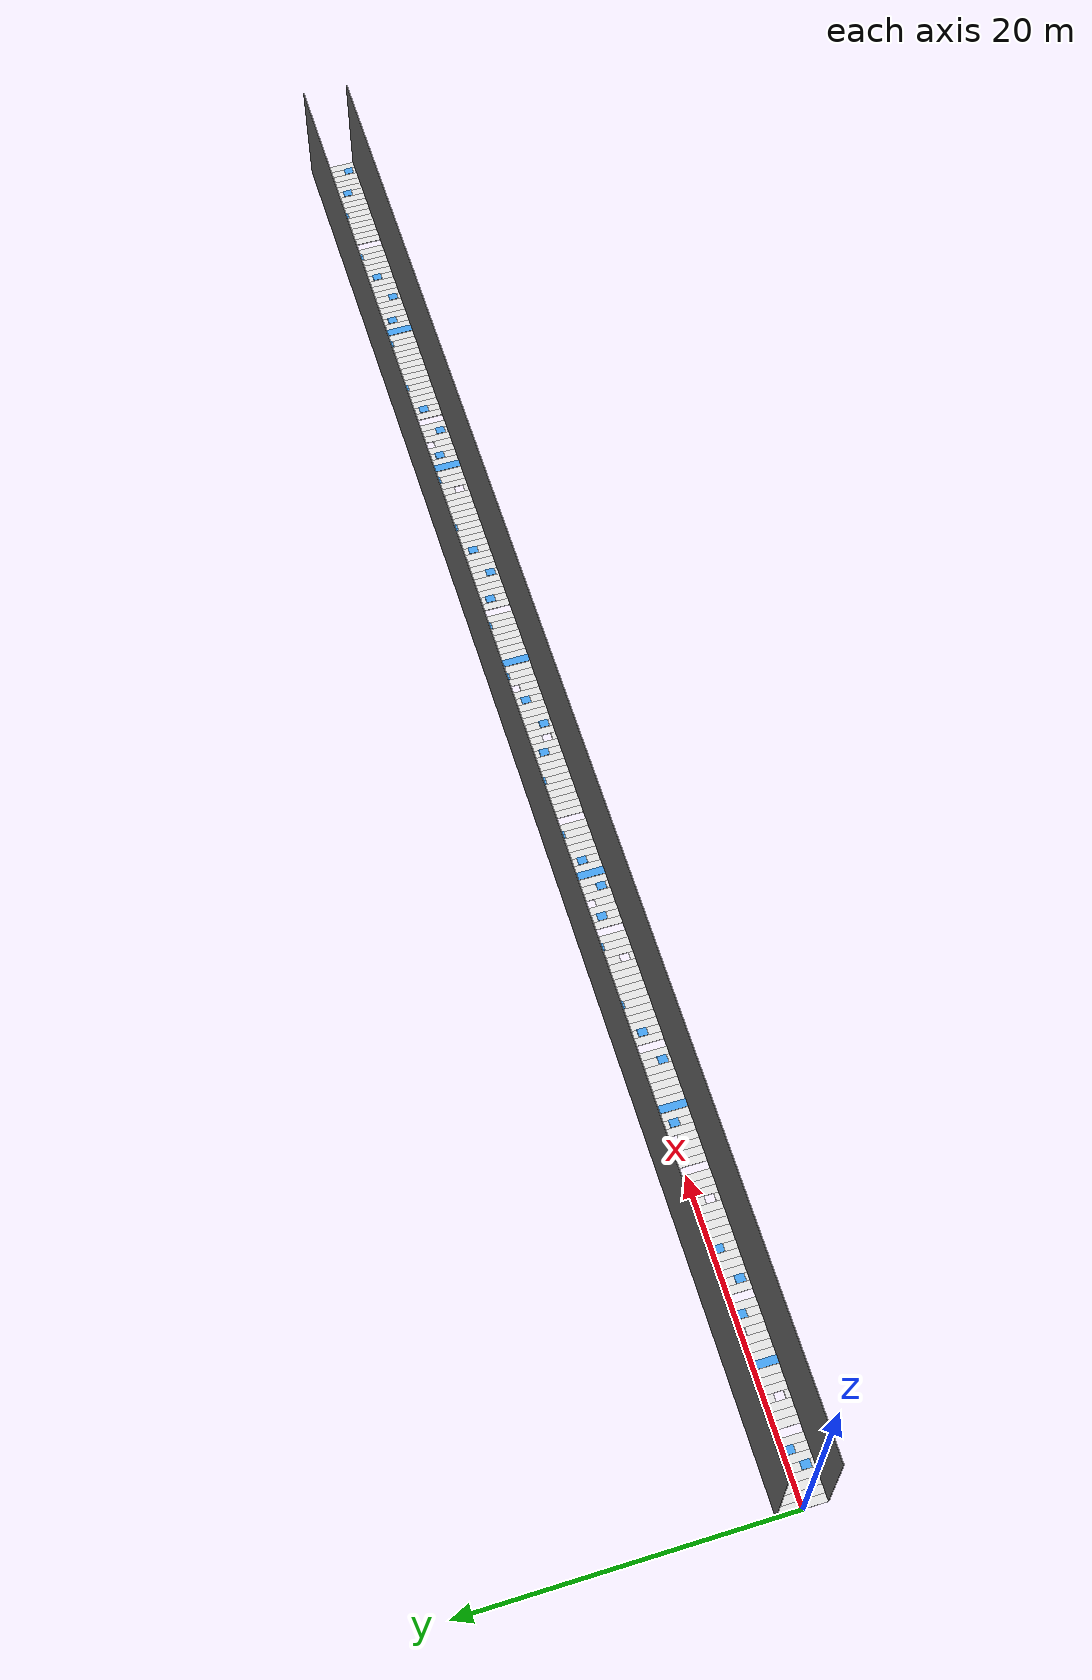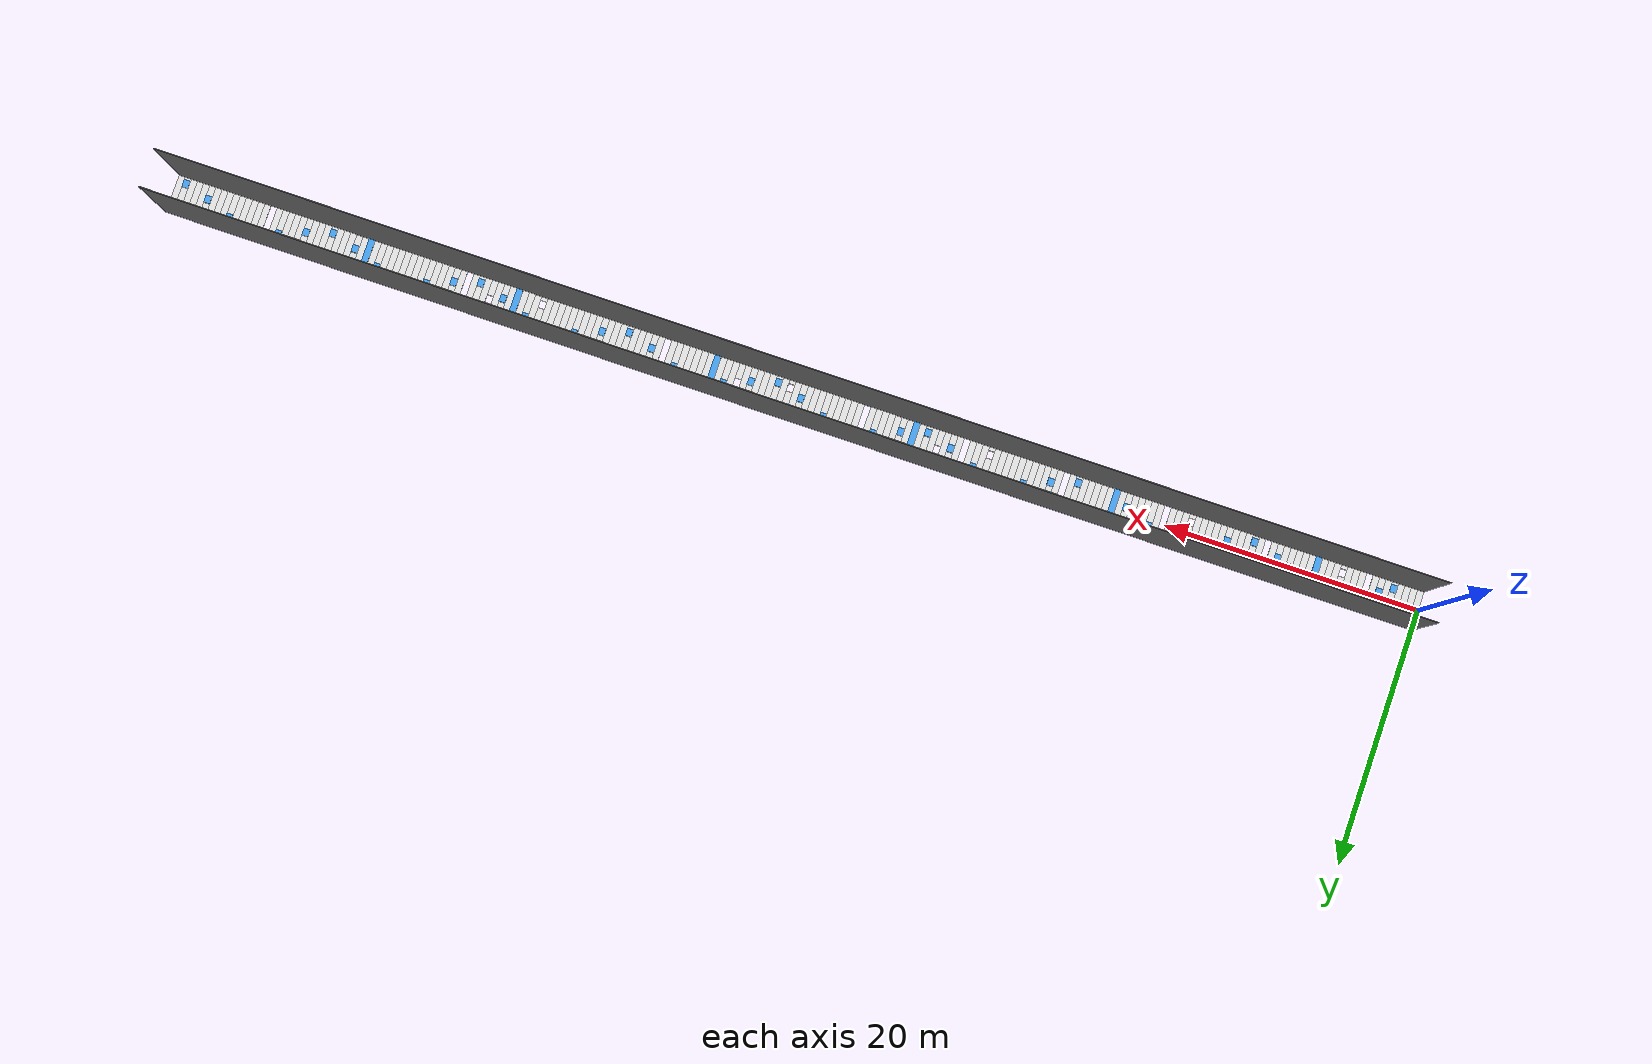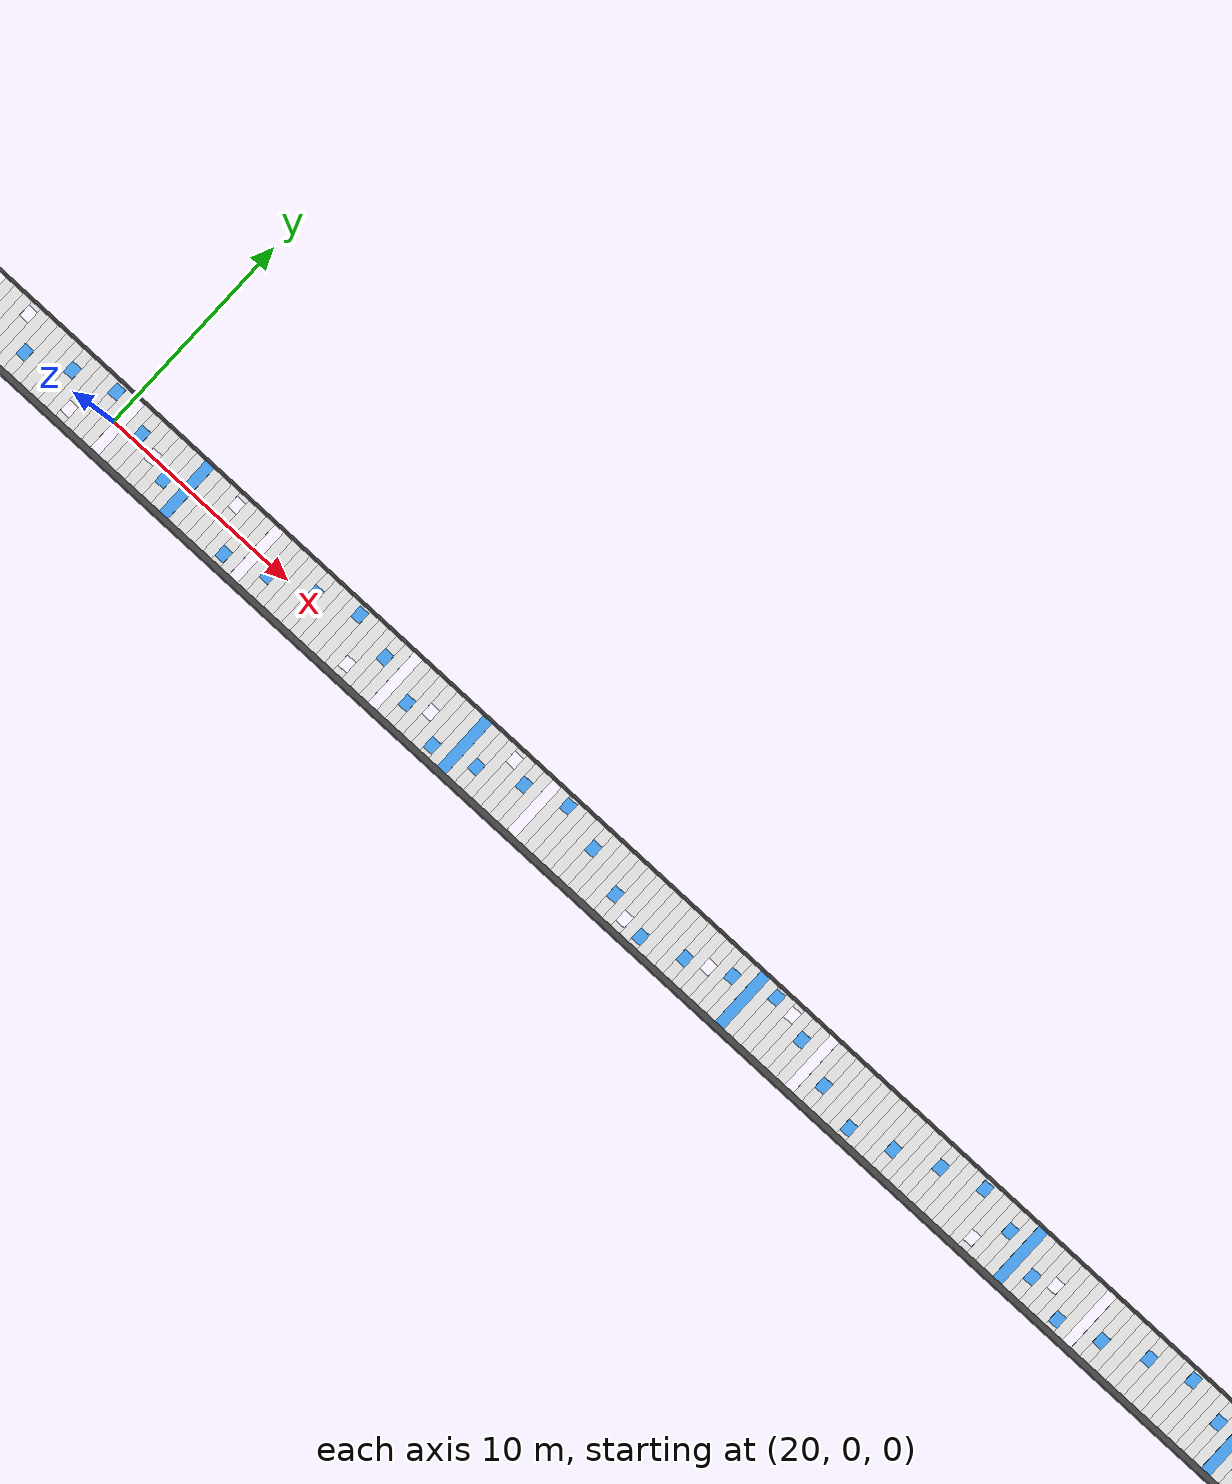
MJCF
<mujoco model="corridor_3x100">
  <compiler angle="degree" autolimits="true"/>
  <option timestep="0.005" gravity="0 0 -9.81"/>
  <size njmax="4000" nconmax="1000"/>
  <asset>
    <material name="mat_floor" rgba="0.85 0.85 0.85 1"/>
    <material name="mat_bump"  rgba="0.25 0.6 0.9 1"/>
    <material name="mat_wall"  rgba="0.4 0.4 0.4 1"/>
  </asset>
  <worldbody>
    <geom name="wall_left" type="box" size="50.000 0.025 4.000" pos="50.000 -1.525 4.000" material="mat_wall"/>
    <geom name="wall_right" type="box" size="50.000 0.025 4.000" pos="50.000 1.525 4.000" material="mat_wall"/>
    <geom type="box" material="mat_floor" size="0.250 1.500 0.025" pos="0.250 0.000 0.025"/>
    <geom type="box" material="mat_floor" size="0.250 1.500 0.025" pos="0.750 0.000 0.025"/>
    <geom type="box" material="mat_floor" size="0.250 1.500 0.025" pos="1.250 0.000 0.025"/>
    <geom type="box" material="mat_floor" size="0.250 1.500 0.025" pos="1.750 0.000 0.025"/>
    <geom type="box" material="mat_floor" size="0.250 1.500 0.025" pos="2.250 0.000 0.025"/>
    <geom type="box" material="mat_bump" size="0.250 0.300 0.040" pos="2.250 -1.000 0.065"/>
    <geom type="box" material="mat_floor" size="0.250 1.500 0.025" pos="2.750 0.000 0.025"/>
    <geom type="box" material="mat_floor" size="0.250 1.500 0.025" pos="3.250 0.000 0.025"/>
    <geom type="box" material="mat_bump" size="0.250 0.300 0.040" pos="3.250 -0.400 0.065"/>
    <geom type="box" material="mat_floor" size="0.250 1.500 0.025" pos="3.750 0.000 0.025"/>
    <geom type="box" material="mat_floor" size="0.250 1.500 0.025" pos="4.750 0.000 0.025"/>
    <geom type="box" material="mat_floor" size="0.250 1.500 0.025" pos="5.250 0.000 0.025"/>
    <geom type="box" material="mat_bump" size="0.250 0.300 0.040" pos="5.250 0.400 0.065"/>
    <geom type="box" material="mat_floor" size="0.250 1.500 0.025" pos="5.750 0.000 0.025"/>
    <geom type="box" material="mat_floor" size="0.250 0.150 0.025" pos="6.250 -1.350 0.025"/>
    <geom type="box" material="mat_floor" size="0.250 1.050 0.025" pos="6.250 0.450 0.025"/>
    <geom type="box" material="mat_floor" size="0.250 1.500 0.025" pos="6.750 0.000 0.025"/>
    <geom type="box" material="mat_floor" size="0.250 1.500 0.025" pos="7.250 0.000 0.025"/>
    <geom type="box" material="mat_bump" size="0.250 0.300 0.040" pos="7.250 1.000 0.065"/>
    <geom type="box" material="mat_floor" size="0.250 1.500 0.025" pos="7.750 0.000 0.025"/>
    <geom type="box" material="mat_floor" size="0.250 1.500 0.025" pos="8.250 0.000 0.025"/>
    <geom type="box" material="mat_bump" size="0.250 1.500 0.040" pos="8.250 0.000 0.065"/>
    <geom type="box" material="mat_floor" size="0.250 1.500 0.025" pos="8.750 0.000 0.025"/>
    <geom type="box" material="mat_floor" size="0.250 1.500 0.025" pos="9.250 0.000 0.025"/>
    <geom type="box" material="mat_bump" size="0.250 0.300 0.040" pos="9.250 0.400 0.065"/>
    <geom type="box" material="mat_floor" size="0.250 1.500 0.025" pos="9.750 0.000 0.025"/>
    <geom type="box" material="mat_floor" size="0.250 0.600 0.025" pos="10.250 -0.900 0.025"/>
    <geom type="box" material="mat_floor" size="0.250 0.600 0.025" pos="10.250 0.900 0.025"/>
    <geom type="box" material="mat_floor" size="0.250 1.500 0.025" pos="10.750 0.000 0.025"/>
    <geom type="box" material="mat_floor" size="0.250 1.500 0.025" pos="11.250 0.000 0.025"/>
    <geom type="box" material="mat_bump" size="0.250 0.300 0.040" pos="11.250 -0.400 0.065"/>
    <geom type="box" material="mat_floor" size="0.250 1.500 0.025" pos="11.750 0.000 0.025"/>
    <geom type="box" material="mat_floor" size="0.250 1.500 0.025" pos="12.750 0.000 0.025"/>
    <geom type="box" material="mat_floor" size="0.250 1.500 0.025" pos="13.250 0.000 0.025"/>
    <geom type="box" material="mat_bump" size="0.250 0.300 0.040" pos="13.250 -1.000 0.065"/>
    <geom type="box" material="mat_floor" size="0.250 1.500 0.025" pos="13.750 0.000 0.025"/>
    <geom type="box" material="mat_floor" size="0.250 1.050 0.025" pos="14.250 -0.450 0.025"/>
    <geom type="box" material="mat_floor" size="0.250 0.150 0.025" pos="14.250 1.350 0.025"/>
    <geom type="box" material="mat_floor" size="0.250 1.500 0.025" pos="14.750 0.000 0.025"/>
    <geom type="box" material="mat_floor" size="0.250 1.500 0.025" pos="15.250 0.000 0.025"/>
    <geom type="box" material="mat_bump" size="0.250 0.300 0.040" pos="15.250 -0.400 0.065"/>
    <geom type="box" material="mat_floor" size="0.250 1.500 0.025" pos="15.750 0.000 0.025"/>
    <geom type="box" material="mat_floor" size="0.250 1.500 0.025" pos="16.250 0.000 0.025"/>
    <geom type="box" material="mat_floor" size="0.250 1.500 0.025" pos="16.750 0.000 0.025"/>
    <geom type="box" material="mat_floor" size="0.250 1.500 0.025" pos="17.250 0.000 0.025"/>
    <geom type="box" material="mat_bump" size="0.250 0.300 0.040" pos="17.250 0.400 0.065"/>
    <geom type="box" material="mat_floor" size="0.250 1.500 0.025" pos="17.750 0.000 0.025"/>
    <geom type="box" material="mat_floor" size="0.250 0.150 0.025" pos="18.250 -1.350 0.025"/>
    <geom type="box" material="mat_floor" size="0.250 1.050 0.025" pos="18.250 0.450 0.025"/>
    <geom type="box" material="mat_floor" size="0.250 1.500 0.025" pos="18.750 0.000 0.025"/>
    <geom type="box" material="mat_floor" size="0.250 1.500 0.025" pos="19.250 0.000 0.025"/>
    <geom type="box" material="mat_bump" size="0.250 0.300 0.040" pos="19.250 1.000 0.065"/>
    <geom type="box" material="mat_floor" size="0.250 1.500 0.025" pos="19.750 0.000 0.025"/>
    <geom type="box" material="mat_floor" size="0.250 1.500 0.025" pos="20.750 0.000 0.025"/>
    <geom type="box" material="mat_floor" size="0.250 1.500 0.025" pos="21.250 0.000 0.025"/>
    <geom type="box" material="mat_bump" size="0.250 0.300 0.040" pos="21.250 0.400 0.065"/>
    <geom type="box" material="mat_floor" size="0.250 1.500 0.025" pos="21.750 0.000 0.025"/>
    <geom type="box" material="mat_floor" size="0.250 0.600 0.025" pos="22.250 -0.900 0.025"/>
    <geom type="box" material="mat_floor" size="0.250 0.600 0.025" pos="22.250 0.900 0.025"/>
    <geom type="box" material="mat_floor" size="0.250 1.500 0.025" pos="22.750 0.000 0.025"/>
    <geom type="box" material="mat_floor" size="0.250 1.500 0.025" pos="23.250 0.000 0.025"/>
    <geom type="box" material="mat_bump" size="0.250 0.300 0.040" pos="23.250 -0.400 0.065"/>
    <geom type="box" material="mat_floor" size="0.250 1.500 0.025" pos="23.750 0.000 0.025"/>
    <geom type="box" material="mat_floor" size="0.250 1.500 0.025" pos="24.250 0.000 0.025"/>
    <geom type="box" material="mat_bump" size="0.250 1.500 0.040" pos="24.250 0.000 0.065"/>
    <geom type="box" material="mat_floor" size="0.250 1.500 0.025" pos="24.750 0.000 0.025"/>
    <geom type="box" material="mat_floor" size="0.250 1.500 0.025" pos="25.250 0.000 0.025"/>
    <geom type="box" material="mat_floor" size="0.250 1.500 0.025" pos="25.750 0.000 0.025"/>
    <geom type="box" material="mat_floor" size="0.250 1.050 0.025" pos="26.250 -0.450 0.025"/>
    <geom type="box" material="mat_floor" size="0.250 0.150 0.025" pos="26.250 1.350 0.025"/>
    <geom type="box" material="mat_floor" size="0.250 1.500 0.025" pos="26.750 0.000 0.025"/>
    <geom type="box" material="mat_floor" size="0.250 1.500 0.025" pos="27.250 0.000 0.025"/>
    <geom type="box" material="mat_bump" size="0.250 0.300 0.040" pos="27.250 -1.000 0.065"/>
    <geom type="box" material="mat_floor" size="0.250 1.500 0.025" pos="27.750 0.000 0.025"/>
    <geom type="box" material="mat_floor" size="0.250 1.500 0.025" pos="28.750 0.000 0.025"/>
    <geom type="box" material="mat_floor" size="0.250 1.500 0.025" pos="29.250 0.000 0.025"/>
    <geom type="box" material="mat_bump" size="0.250 0.300 0.040" pos="29.250 -0.400 0.065"/>
    <geom type="box" material="mat_floor" size="0.250 1.500 0.025" pos="29.750 0.000 0.025"/>
    <geom type="box" material="mat_floor" size="0.250 1.500 0.025" pos="30.250 0.000 0.025"/>
    <geom type="box" material="mat_floor" size="0.250 1.500 0.025" pos="30.750 0.000 0.025"/>
    <geom type="box" material="mat_floor" size="0.250 1.500 0.025" pos="31.250 0.000 0.025"/>
    <geom type="box" material="mat_bump" size="0.250 0.300 0.040" pos="31.250 0.400 0.065"/>
    <geom type="box" material="mat_floor" size="0.250 1.500 0.025" pos="31.750 0.000 0.025"/>
    <geom type="box" material="mat_floor" size="0.250 1.500 0.025" pos="32.250 0.000 0.025"/>
    <geom type="box" material="mat_floor" size="0.250 1.500 0.025" pos="32.750 0.000 0.025"/>
    <geom type="box" material="mat_floor" size="0.250 1.500 0.025" pos="33.250 0.000 0.025"/>
    <geom type="box" material="mat_bump" size="0.250 0.300 0.040" pos="33.250 1.000 0.065"/>
    <geom type="box" material="mat_floor" size="0.250 1.500 0.025" pos="33.750 0.000 0.025"/>
    <geom type="box" material="mat_floor" size="0.250 0.150 0.025" pos="34.250 -1.350 0.025"/>
    <geom type="box" material="mat_floor" size="0.250 1.050 0.025" pos="34.250 0.450 0.025"/>
    <geom type="box" material="mat_floor" size="0.250 1.500 0.025" pos="34.750 0.000 0.025"/>
    <geom type="box" material="mat_floor" size="0.250 1.500 0.025" pos="35.250 0.000 0.025"/>
    <geom type="box" material="mat_bump" size="0.250 0.300 0.040" pos="35.250 0.400 0.065"/>
    <geom type="box" material="mat_floor" size="0.250 1.500 0.025" pos="35.750 0.000 0.025"/>
    <geom type="box" material="mat_floor" size="0.250 1.500 0.025" pos="36.750 0.000 0.025"/>
    <geom type="box" material="mat_floor" size="0.250 1.500 0.025" pos="37.250 0.000 0.025"/>
    <geom type="box" material="mat_bump" size="0.250 0.300 0.040" pos="37.250 -0.400 0.065"/>
    <geom type="box" material="mat_floor" size="0.250 1.500 0.025" pos="37.750 0.000 0.025"/>
    <geom type="box" material="mat_floor" size="0.250 0.600 0.025" pos="38.250 -0.900 0.025"/>
    <geom type="box" material="mat_floor" size="0.250 0.600 0.025" pos="38.250 0.900 0.025"/>
    <geom type="box" material="mat_floor" size="0.250 1.500 0.025" pos="38.750 0.000 0.025"/>
    <geom type="box" material="mat_floor" size="0.250 1.500 0.025" pos="39.250 0.000 0.025"/>
    <geom type="box" material="mat_bump" size="0.250 0.300 0.040" pos="39.250 -1.000 0.065"/>
    <geom type="box" material="mat_floor" size="0.250 1.500 0.025" pos="39.750 0.000 0.025"/>
    <geom type="box" material="mat_floor" size="0.250 1.500 0.025" pos="40.250 0.000 0.025"/>
    <geom type="box" material="mat_bump" size="0.250 1.500 0.040" pos="40.250 0.000 0.065"/>
    <geom type="box" material="mat_floor" size="0.250 1.500 0.025" pos="40.750 0.000 0.025"/>
    <geom type="box" material="mat_floor" size="0.250 1.500 0.025" pos="41.250 0.000 0.025"/>
    <geom type="box" material="mat_bump" size="0.250 0.300 0.040" pos="41.250 -0.400 0.065"/>
    <geom type="box" material="mat_floor" size="0.250 1.500 0.025" pos="41.750 0.000 0.025"/>
    <geom type="box" material="mat_floor" size="0.250 1.050 0.025" pos="42.250 -0.450 0.025"/>
    <geom type="box" material="mat_floor" size="0.250 0.150 0.025" pos="42.250 1.350 0.025"/>
    <geom type="box" material="mat_floor" size="0.250 1.500 0.025" pos="42.750 0.000 0.025"/>
    <geom type="box" material="mat_floor" size="0.250 1.500 0.025" pos="43.250 0.000 0.025"/>
    <geom type="box" material="mat_bump" size="0.250 0.300 0.040" pos="43.250 0.400 0.065"/>
    <geom type="box" material="mat_floor" size="0.250 1.500 0.025" pos="43.750 0.000 0.025"/>
    <geom type="box" material="mat_floor" size="0.250 1.500 0.025" pos="44.750 0.000 0.025"/>
    <geom type="box" material="mat_floor" size="0.250 1.500 0.025" pos="45.250 0.000 0.025"/>
    <geom type="box" material="mat_bump" size="0.250 0.300 0.040" pos="45.250 1.000 0.065"/>
    <geom type="box" material="mat_floor" size="0.250 1.500 0.025" pos="45.750 0.000 0.025"/>
    <geom type="box" material="mat_floor" size="0.250 1.500 0.025" pos="46.250 0.000 0.025"/>
    <geom type="box" material="mat_floor" size="0.250 1.500 0.025" pos="46.750 0.000 0.025"/>
    <geom type="box" material="mat_floor" size="0.250 1.500 0.025" pos="47.250 0.000 0.025"/>
    <geom type="box" material="mat_bump" size="0.250 0.300 0.040" pos="47.250 0.400 0.065"/>
    <geom type="box" material="mat_floor" size="0.250 1.500 0.025" pos="47.750 0.000 0.025"/>
    <geom type="box" material="mat_floor" size="0.250 1.500 0.025" pos="48.250 0.000 0.025"/>
    <geom type="box" material="mat_floor" size="0.250 1.500 0.025" pos="48.750 0.000 0.025"/>
    <geom type="box" material="mat_floor" size="0.250 1.500 0.025" pos="49.250 0.000 0.025"/>
    <geom type="box" material="mat_bump" size="0.250 0.300 0.040" pos="49.250 -0.400 0.065"/>
    <geom type="box" material="mat_floor" size="0.250 1.500 0.025" pos="49.750 0.000 0.025"/>
    <geom type="box" material="mat_floor" size="0.250 0.150 0.025" pos="50.250 -1.350 0.025"/>
    <geom type="box" material="mat_floor" size="0.250 1.050 0.025" pos="50.250 0.450 0.025"/>
    <geom type="box" material="mat_floor" size="0.250 1.500 0.025" pos="50.750 0.000 0.025"/>
    <geom type="box" material="mat_floor" size="0.250 1.500 0.025" pos="51.250 0.000 0.025"/>
    <geom type="box" material="mat_bump" size="0.250 0.300 0.040" pos="51.250 -1.000 0.065"/>
    <geom type="box" material="mat_floor" size="0.250 1.500 0.025" pos="51.750 0.000 0.025"/>
    <geom type="box" material="mat_floor" size="0.250 1.500 0.025" pos="52.250 0.000 0.025"/>
    <geom type="box" material="mat_floor" size="0.250 1.500 0.025" pos="52.750 0.000 0.025"/>
    <geom type="box" material="mat_floor" size="0.250 1.500 0.025" pos="53.250 0.000 0.025"/>
    <geom type="box" material="mat_bump" size="0.250 0.300 0.040" pos="53.250 -0.400 0.065"/>
    <geom type="box" material="mat_floor" size="0.250 1.500 0.025" pos="53.750 0.000 0.025"/>
    <geom type="box" material="mat_floor" size="0.250 0.600 0.025" pos="54.250 -0.900 0.025"/>
    <geom type="box" material="mat_floor" size="0.250 0.600 0.025" pos="54.250 0.900 0.025"/>
    <geom type="box" material="mat_floor" size="0.250 1.500 0.025" pos="54.750 0.000 0.025"/>
    <geom type="box" material="mat_floor" size="0.250 1.500 0.025" pos="55.250 0.000 0.025"/>
    <geom type="box" material="mat_bump" size="0.250 0.300 0.040" pos="55.250 0.400 0.065"/>
    <geom type="box" material="mat_floor" size="0.250 1.500 0.025" pos="55.750 0.000 0.025"/>
    <geom type="box" material="mat_floor" size="0.250 1.500 0.025" pos="56.250 0.000 0.025"/>
    <geom type="box" material="mat_bump" size="0.250 1.500 0.040" pos="56.250 0.000 0.065"/>
    <geom type="box" material="mat_floor" size="0.250 1.500 0.025" pos="56.750 0.000 0.025"/>
    <geom type="box" material="mat_floor" size="0.250 1.500 0.025" pos="57.250 0.000 0.025"/>
    <geom type="box" material="mat_bump" size="0.250 0.300 0.040" pos="57.250 1.000 0.065"/>
    <geom type="box" material="mat_floor" size="0.250 1.500 0.025" pos="57.750 0.000 0.025"/>
    <geom type="box" material="mat_floor" size="0.250 1.050 0.025" pos="58.250 -0.450 0.025"/>
    <geom type="box" material="mat_floor" size="0.250 0.150 0.025" pos="58.250 1.350 0.025"/>
    <geom type="box" material="mat_floor" size="0.250 1.500 0.025" pos="58.750 0.000 0.025"/>
    <geom type="box" material="mat_floor" size="0.250 1.500 0.025" pos="59.250 0.000 0.025"/>
    <geom type="box" material="mat_bump" size="0.250 0.300 0.040" pos="59.250 0.400 0.065"/>
    <geom type="box" material="mat_floor" size="0.250 1.500 0.025" pos="59.750 0.000 0.025"/>
    <geom type="box" material="mat_floor" size="0.250 1.500 0.025" pos="60.750 0.000 0.025"/>
    <geom type="box" material="mat_floor" size="0.250 1.500 0.025" pos="61.250 0.000 0.025"/>
    <geom type="box" material="mat_bump" size="0.250 0.300 0.040" pos="61.250 -0.400 0.065"/>
    <geom type="box" material="mat_floor" size="0.250 1.500 0.025" pos="61.750 0.000 0.025"/>
    <geom type="box" material="mat_floor" size="0.250 1.500 0.025" pos="62.250 0.000 0.025"/>
    <geom type="box" material="mat_floor" size="0.250 1.500 0.025" pos="62.750 0.000 0.025"/>
    <geom type="box" material="mat_floor" size="0.250 1.500 0.025" pos="63.250 0.000 0.025"/>
    <geom type="box" material="mat_bump" size="0.250 0.300 0.040" pos="63.250 -1.000 0.065"/>
    <geom type="box" material="mat_floor" size="0.250 1.500 0.025" pos="63.750 0.000 0.025"/>
    <geom type="box" material="mat_floor" size="0.250 1.500 0.025" pos="64.250 0.000 0.025"/>
    <geom type="box" material="mat_floor" size="0.250 1.500 0.025" pos="64.750 0.000 0.025"/>
    <geom type="box" material="mat_floor" size="0.250 1.500 0.025" pos="65.250 0.000 0.025"/>
    <geom type="box" material="mat_bump" size="0.250 0.300 0.040" pos="65.250 -0.400 0.065"/>
    <geom type="box" material="mat_floor" size="0.250 1.500 0.025" pos="65.750 0.000 0.025"/>
    <geom type="box" material="mat_floor" size="0.250 1.500 0.025" pos="66.250 0.000 0.025"/>
    <geom type="box" material="mat_floor" size="0.250 1.500 0.025" pos="66.750 0.000 0.025"/>
    <geom type="box" material="mat_floor" size="0.250 1.500 0.025" pos="67.250 0.000 0.025"/>
    <geom type="box" material="mat_bump" size="0.250 0.300 0.040" pos="67.250 0.400 0.065"/>
    <geom type="box" material="mat_floor" size="0.250 1.500 0.025" pos="67.750 0.000 0.025"/>
    <geom type="box" material="mat_floor" size="0.250 1.500 0.025" pos="68.250 0.000 0.025"/>
    <geom type="box" material="mat_floor" size="0.250 1.500 0.025" pos="68.750 0.000 0.025"/>
    <geom type="box" material="mat_floor" size="0.250 1.500 0.025" pos="69.250 0.000 0.025"/>
    <geom type="box" material="mat_bump" size="0.250 0.300 0.040" pos="69.250 1.000 0.065"/>
    <geom type="box" material="mat_floor" size="0.250 1.500 0.025" pos="69.750 0.000 0.025"/>
    <geom type="box" material="mat_floor" size="0.250 0.150 0.025" pos="70.250 -1.350 0.025"/>
    <geom type="box" material="mat_floor" size="0.250 1.050 0.025" pos="70.250 0.450 0.025"/>
    <geom type="box" material="mat_floor" size="0.250 1.500 0.025" pos="70.750 0.000 0.025"/>
    <geom type="box" material="mat_floor" size="0.250 1.500 0.025" pos="71.250 0.000 0.025"/>
    <geom type="box" material="mat_bump" size="0.250 0.300 0.040" pos="71.250 0.400 0.065"/>
    <geom type="box" material="mat_floor" size="0.250 1.500 0.025" pos="71.750 0.000 0.025"/>
    <geom type="box" material="mat_floor" size="0.250 1.500 0.025" pos="72.250 0.000 0.025"/>
    <geom type="box" material="mat_bump" size="0.250 1.500 0.040" pos="72.250 0.000 0.065"/>
    <geom type="box" material="mat_floor" size="0.250 1.500 0.025" pos="72.750 0.000 0.025"/>
    <geom type="box" material="mat_floor" size="0.250 1.500 0.025" pos="73.250 0.000 0.025"/>
    <geom type="box" material="mat_bump" size="0.250 0.300 0.040" pos="73.250 -0.400 0.065"/>
    <geom type="box" material="mat_floor" size="0.250 1.500 0.025" pos="73.750 0.000 0.025"/>
    <geom type="box" material="mat_floor" size="0.250 0.600 0.025" pos="74.250 -0.900 0.025"/>
    <geom type="box" material="mat_floor" size="0.250 0.600 0.025" pos="74.250 0.900 0.025"/>
    <geom type="box" material="mat_floor" size="0.250 1.500 0.025" pos="74.750 0.000 0.025"/>
    <geom type="box" material="mat_floor" size="0.250 1.500 0.025" pos="75.250 0.000 0.025"/>
    <geom type="box" material="mat_bump" size="0.250 0.300 0.040" pos="75.250 -1.000 0.065"/>
    <geom type="box" material="mat_floor" size="0.250 1.500 0.025" pos="75.750 0.000 0.025"/>
    <geom type="box" material="mat_floor" size="0.250 1.500 0.025" pos="76.750 0.000 0.025"/>
    <geom type="box" material="mat_floor" size="0.250 1.500 0.025" pos="77.250 0.000 0.025"/>
    <geom type="box" material="mat_bump" size="0.250 0.300 0.040" pos="77.250 -0.400 0.065"/>
    <geom type="box" material="mat_floor" size="0.250 1.500 0.025" pos="77.750 0.000 0.025"/>
    <geom type="box" material="mat_floor" size="0.250 1.500 0.025" pos="78.250 0.000 0.025"/>
    <geom type="box" material="mat_floor" size="0.250 1.500 0.025" pos="78.750 0.000 0.025"/>
    <geom type="box" material="mat_floor" size="0.250 1.500 0.025" pos="79.250 0.000 0.025"/>
    <geom type="box" material="mat_bump" size="0.250 0.300 0.040" pos="79.250 0.400 0.065"/>
    <geom type="box" material="mat_floor" size="0.250 1.500 0.025" pos="79.750 0.000 0.025"/>
    <geom type="box" material="mat_floor" size="0.250 1.500 0.025" pos="80.250 0.000 0.025"/>
    <geom type="box" material="mat_floor" size="0.250 1.500 0.025" pos="80.750 0.000 0.025"/>
    <geom type="box" material="mat_floor" size="0.250 1.500 0.025" pos="81.250 0.000 0.025"/>
    <geom type="box" material="mat_bump" size="0.250 0.300 0.040" pos="81.250 1.000 0.065"/>
    <geom type="box" material="mat_floor" size="0.250 1.500 0.025" pos="81.750 0.000 0.025"/>
    <geom type="box" material="mat_floor" size="0.250 1.500 0.025" pos="82.250 0.000 0.025"/>
    <geom type="box" material="mat_floor" size="0.250 1.500 0.025" pos="82.750 0.000 0.025"/>
    <geom type="box" material="mat_floor" size="0.250 1.500 0.025" pos="83.250 0.000 0.025"/>
    <geom type="box" material="mat_bump" size="0.250 0.300 0.040" pos="83.250 0.400 0.065"/>
    <geom type="box" material="mat_floor" size="0.250 1.500 0.025" pos="83.750 0.000 0.025"/>
    <geom type="box" material="mat_floor" size="0.250 1.500 0.025" pos="84.250 0.000 0.025"/>
    <geom type="box" material="mat_bump" size="0.250 1.500 0.040" pos="84.250 0.000 0.065"/>
    <geom type="box" material="mat_floor" size="0.250 1.500 0.025" pos="84.750 0.000 0.025"/>
    <geom type="box" material="mat_floor" size="0.250 1.500 0.025" pos="85.250 0.000 0.025"/>
    <geom type="box" material="mat_bump" size="0.250 0.300 0.040" pos="85.250 -0.400 0.065"/>
    <geom type="box" material="mat_floor" size="0.250 1.500 0.025" pos="85.750 0.000 0.025"/>
    <geom type="box" material="mat_floor" size="0.250 1.500 0.025" pos="86.250 0.000 0.025"/>
    <geom type="box" material="mat_floor" size="0.250 1.500 0.025" pos="86.750 0.000 0.025"/>
    <geom type="box" material="mat_floor" size="0.250 1.500 0.025" pos="87.250 0.000 0.025"/>
    <geom type="box" material="mat_bump" size="0.250 0.300 0.040" pos="87.250 -1.000 0.065"/>
    <geom type="box" material="mat_floor" size="0.250 1.500 0.025" pos="87.750 0.000 0.025"/>
    <geom type="box" material="mat_floor" size="0.250 1.050 0.025" pos="88.250 -0.450 0.025"/>
    <geom type="box" material="mat_floor" size="0.250 0.150 0.025" pos="88.250 1.350 0.025"/>
    <geom type="box" material="mat_floor" size="0.250 1.500 0.025" pos="88.750 0.000 0.025"/>
    <geom type="box" material="mat_floor" size="0.250 1.500 0.025" pos="89.250 0.000 0.025"/>
    <geom type="box" material="mat_bump" size="0.250 0.300 0.040" pos="89.250 -0.400 0.065"/>
    <geom type="box" material="mat_floor" size="0.250 1.500 0.025" pos="89.750 0.000 0.025"/>
    <geom type="box" material="mat_floor" size="0.250 1.500 0.025" pos="90.250 0.000 0.025"/>
    <geom type="box" material="mat_floor" size="0.250 1.500 0.025" pos="90.750 0.000 0.025"/>
    <geom type="box" material="mat_floor" size="0.250 1.500 0.025" pos="91.250 0.000 0.025"/>
    <geom type="box" material="mat_bump" size="0.250 0.300 0.040" pos="91.250 0.400 0.065"/>
    <geom type="box" material="mat_floor" size="0.250 1.500 0.025" pos="91.750 0.000 0.025"/>
    <geom type="box" material="mat_floor" size="0.250 1.500 0.025" pos="92.750 0.000 0.025"/>
    <geom type="box" material="mat_floor" size="0.250 1.500 0.025" pos="93.250 0.000 0.025"/>
    <geom type="box" material="mat_bump" size="0.250 0.300 0.040" pos="93.250 1.000 0.065"/>
    <geom type="box" material="mat_floor" size="0.250 1.500 0.025" pos="93.750 0.000 0.025"/>
    <geom type="box" material="mat_floor" size="0.250 1.500 0.025" pos="94.250 0.000 0.025"/>
    <geom type="box" material="mat_floor" size="0.250 1.500 0.025" pos="94.750 0.000 0.025"/>
    <geom type="box" material="mat_floor" size="0.250 1.500 0.025" pos="95.250 0.000 0.025"/>
    <geom type="box" material="mat_bump" size="0.250 0.300 0.040" pos="95.250 0.400 0.065"/>
    <geom type="box" material="mat_floor" size="0.250 1.500 0.025" pos="95.750 0.000 0.025"/>
    <geom type="box" material="mat_floor" size="0.250 1.500 0.025" pos="96.250 0.000 0.025"/>
    <geom type="box" material="mat_floor" size="0.250 1.500 0.025" pos="96.750 0.000 0.025"/>
    <geom type="box" material="mat_floor" size="0.250 1.500 0.025" pos="97.250 0.000 0.025"/>
    <geom type="box" material="mat_bump" size="0.250 0.300 0.040" pos="97.250 -0.400 0.065"/>
    <geom type="box" material="mat_floor" size="0.250 1.500 0.025" pos="97.750 0.000 0.025"/>
    <geom type="box" material="mat_floor" size="0.250 1.500 0.025" pos="98.250 0.000 0.025"/>
    <geom type="box" material="mat_floor" size="0.250 1.500 0.025" pos="98.750 0.000 0.025"/>
    <geom type="box" material="mat_floor" size="0.250 1.500 0.025" pos="99.250 0.000 0.025"/>
    <geom type="box" material="mat_bump" size="0.250 0.300 0.040" pos="99.250 -1.000 0.065"/>
    <geom type="box" material="mat_floor" size="0.250 1.500 0.025" pos="99.750 0.000 0.025"/>
  </worldbody>
</mujoco>
